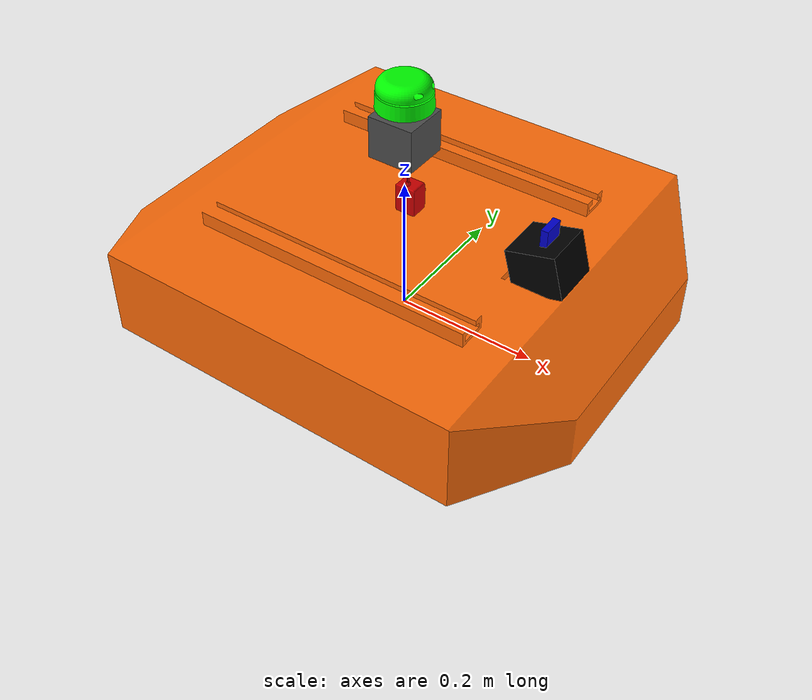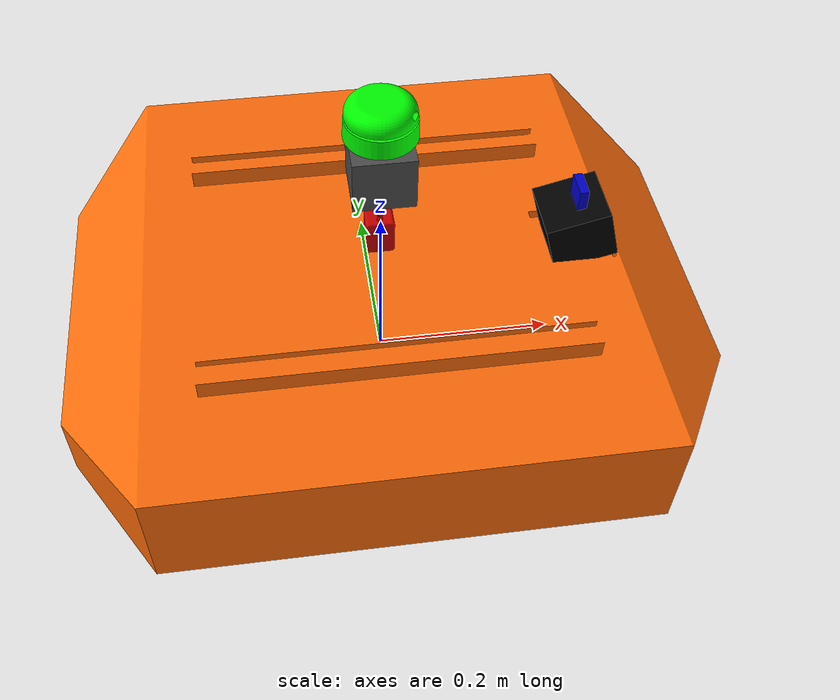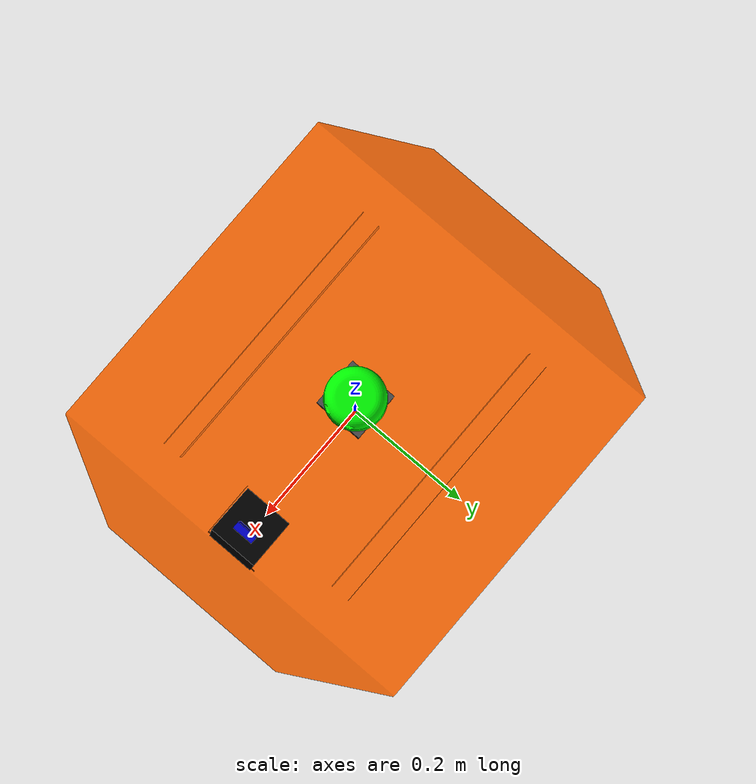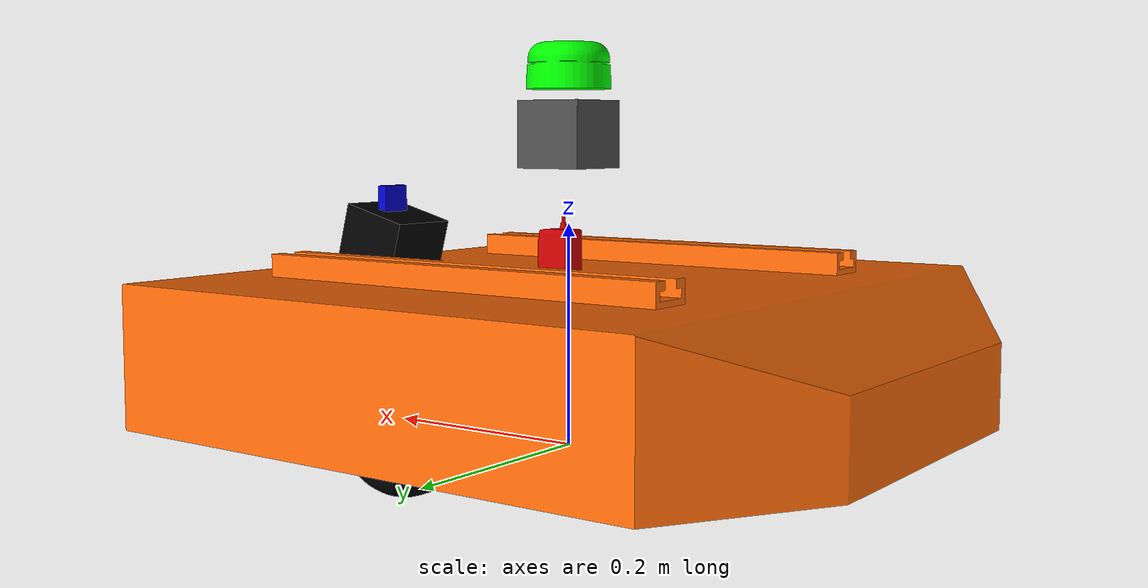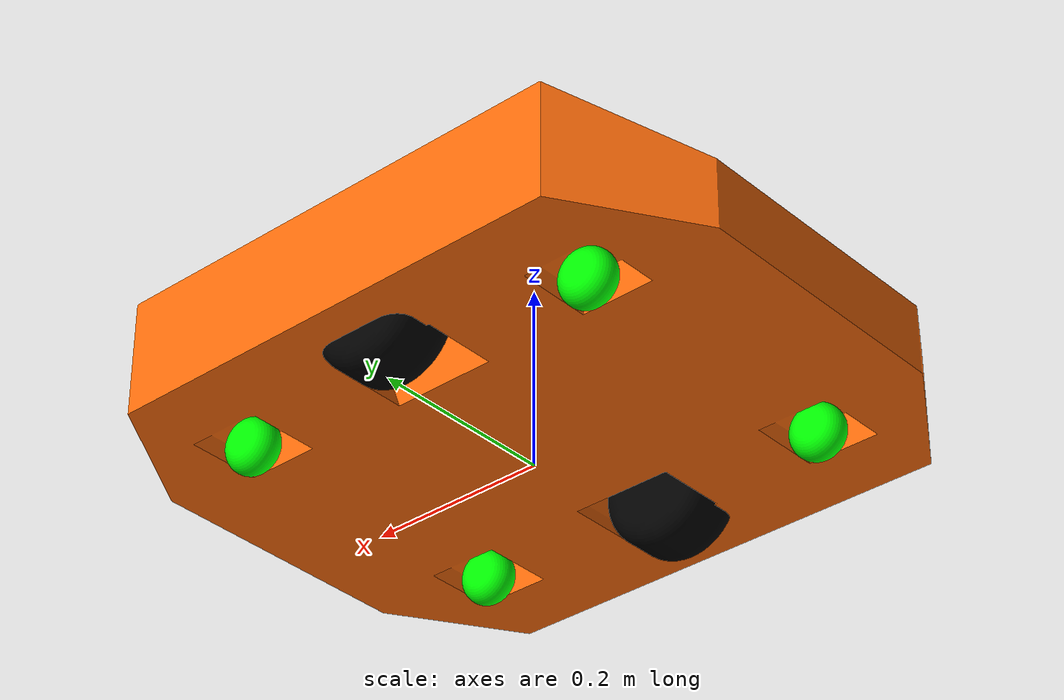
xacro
<?xml version="1.0" encoding="utf-8"?>
<robot name="tracer2" xmlns:xacro="http://www.ros.org/wiki/xacro">

  <xacro:include filename="$(find hospital-agv-sim)/urdf/materials.xacro" />
  <xacro:include filename="$(find hospital-agv-sim)/urdf/tracer2.gazebo" />

  <xacro:include filename="$(find hospital-agv-sim)/urdf/sensors/odom.xacro" />
  <xacro:include filename="$(find hospital-agv-sim)/urdf/sensors/imu.xacro" />
  <xacro:include filename="$(find hospital-agv-sim)/urdf/sensors/lidar.xacro" />
  <xacro:include filename="$(find hospital-agv-sim)/urdf/sensors/camera.xacro" />
  <xacro:include filename="$(find hospital-agv-sim)/urdf/sensors/livox_mid70.xacro" />
  <xacro:include filename="$(find hospital-agv-sim)/urdf/sensors/livox_mid360.xacro"/>

  <link name="base_footprint"/>

  <joint name="base_joint" type="fixed">
    <parent link="base_footprint"/>
    <child link="base_link"/>
    <origin xyz="0 0 0" rpy="0 0 0"/>
  </joint>

  <link name="base_link">
    <inertial>
      <origin xyz="-0.0003 0 0.092" rpy="0 0 0" />
      <mass value="42.875" />
      <inertia ixx="1.14" ixy="0" ixz="0.0007" iyy="1.50" iyz="0" izz="2.54" />
    </inertial>
    <visual>
      <origin xyz="0 0 0" rpy="0 0 0" />
      <geometry>
        <mesh filename="package://hospital-agv-sim/meshes/base_link.STL" />
      </geometry>
      <material name="orange"/>
    </visual>
    <collision>
      <origin xyz="0 0 0.1" rpy="0 0 0" />
      <geometry>
         <box size="0.6 0.4 0.15" />
      </geometry>
    </collision>
  </link>

  <xacro:macro name="apoyo_macro" params="name x y rpy_offset">
    <link name="${name}">
      <inertial>
        <mass value="0.08" /><inertia ixx="0.00002" ixy="0" ixz="0" iyy="0.00002" iyz="0" izz="0.00003" />
      </inertial>
      <visual>
        <origin xyz="0 0 0" rpy="0 0 0"/>
        <geometry>
           <mesh filename="package://hospital-agv-sim/meshes/${name}.STL" />
        </geometry>
        <material name="green"/>
      </visual>
      <collision>
        <geometry><sphere radius="0.03"/></geometry>
        <surface>
          <friction>
            <ode><mu>0.001</mu><mu2>0.001</mu2></ode>
          </friction>
        </surface>
      </collision>
    </link>
    <joint name="${name}_joint" type="fixed">
      <origin xyz="${x} ${y} 0.03" rpy="1.5708 ${rpy_offset} 0" />
      <parent link="base_link" /><child link="${name}" />
    </joint>
  </xacro:macro>

  <xacro:apoyo_macro name="apoyo_izquierdo_delantero_Link" x="0.21" y="0.1425"  rpy_offset="0"/>
  <xacro:apoyo_macro name="apoyo_derecho_delantero_Link"   x="0.21" y="-0.1425" rpy_offset="0"/>
  <xacro:apoyo_macro name="apoyo_izquierdo_trasero_Link"   x="-0.21" y="0.1425"  rpy_offset="1.2815"/>
  <xacro:apoyo_macro name="apoyo_derecho_trasero_Link"     x="-0.21" y="-0.1425" rpy_offset="-0.0407"/>

  <xacro:tracer_odom parent="base_link" />
  <xacro:sensor_imu parent="base_link"            xyz="0 0 0.175" rpy="0 0 0"/>
  <xacro:sensor_lidar parent="base_link"          xyz="0.0 0.0 0.32" rpy="0 0 0"/>
  <xacro:sensor_camera parent="base_link"         xyz="0.213 0 0.215" rpy="0 0 0"/>
  <xacro:sensor_livox_mid70 parent="base_link"    xyz="0.213 0 0.175" rpy="0 -0.2618 0"/>
  <xacro:sensor_livox_mid360 parent="base_link"   xyz="0.0 0.0 0.28" rpy="0 0 0"/>

</robot>

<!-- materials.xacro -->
<robot>

  <material name="black">
    <color rgba="0.0 0.0 0.0 1.0"/>
  </material>

  <material name="blue">
    <color rgba="0.0 0.0 0.8 1.0"/>
  </material>

  <material name="green">
    <color rgba="0.0 1.0 0.0 1.0"/>
  </material>

  <material name="grey">
    <color rgba="0.2 0.2 0.2 1.0"/>
  </material>

  <material name="orange">
    <color rgba="${255/255} ${108/255} ${10/255} 1.0"/>
  </material>

  <material name="brown">
    <color rgba="${222/255} ${207/255} ${195/255} 1.0"/>
  </material>

  <material name="red">
    <color rgba="0.8 0.0 0.0 1.0"/>
  </material>

  <material name="white">
    <color rgba="1.0 1.0 1.0 1.0"/>
  </material>

  <material name="pastel_green">
    <color rgba="${196/255} ${240/255} ${209/255} 1.0"/>
  </material>
</robot>

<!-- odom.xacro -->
<robot xmlns:xacro="http://www.ros.org/wiki/xacro">

  <xacro:macro name="tracer_odom" params="parent">

    <link name="rueda_izquierda_Link">
      <inertial>
        <origin xyz="0 0 0.037" rpy="0 0 0" />
        <mass value="0.85" />
        <inertia ixx="0.0011" ixy="0" ixz="0" iyy="0.0011" iyz="0" izz="0.0015" />
      </inertial>
      <visual>
        <origin xyz="0 0 0" rpy="0 0 0"/>
        <geometry>
           <mesh filename="package://hospital-agv-sim/meshes/rueda_izquierda_Link.STL" />
        </geometry>
        <material name="black"/>
      </visual>
      <collision>
        <origin xyz="0 0 0" rpy="0 0 0"/>
        <geometry>
          <cylinder radius="0.0625" length="0.04" />
        </geometry>
      </collision>
    </link>

    <joint name="rueda_izquierda_joint" type="continuous">
      <origin xyz="0 0.17 0.0625" rpy="-1.5708 0 0" />
      <parent link="${parent}" />
      <child link="rueda_izquierda_Link" />
      <axis xyz="0 0 1" />
    </joint>

    <link name="rueda_derecha_Link">
      <inertial>
        <origin xyz="0 0 -0.037" rpy="0 0 0" />
        <mass value="0.85" />
        <inertia ixx="0.0011" ixy="0" ixz="0" iyy="0.0011" iyz="0" izz="0.0015" />
      </inertial>
      <visual>
        <origin xyz="0 0 0" rpy="0 0 0"/>
        <geometry>
           <mesh filename="package://hospital-agv-sim/meshes/rueda_derecha_Link.STL" />
        </geometry>
        <material name="black"/>
      </visual>
      <collision>
        <origin xyz="0 0 0" rpy="0 0 0"/>
        <geometry>
          <cylinder radius="0.0625" length="0.04" />
        </geometry>
      </collision>
    </link>

    <joint name="rueda_derecha_joint" type="continuous">
      <origin xyz="0 -0.17 0.0625" rpy="-1.5708 0 0" />
      <parent link="${parent}" />
      <child link="rueda_derecha_Link" />
      <axis xyz="0 0 1" />
    </joint>

  </xacro:macro>
</robot>

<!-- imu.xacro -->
<robot xmlns:xacro="http://www.ros.org/wiki/xacro">
  <xacro:macro name="sensor_imu" params="parent xyz:='0 0 0' rpy:='0 0 0'">

    <link name="imu_link">
      <visual>
          <geometry>
              <mesh filename="package://hospital-agv-sim/meshes/imu_Link.STL" />
          </geometry>
          <material name="red"/>
          <origin xyz="0 0 0" rpy="0 -1.5708 0"/>
      </visual>
    </link>

    <joint name="imu_joint" type="fixed">
      <parent link="${parent}"/>
      <child link="imu_link"/>
      <origin xyz="${xyz}" rpy="${rpy}"/>
    </joint>

    <gazebo reference="imu_link">
      <sensor name="imu_sensor" type="imu">
        <always_on>1</always_on>
        <update_rate>100</update_rate>
        <visualize>false</visualize>
        <topic>imu</topic>
        <gz_frame_id>imu_link</gz_frame_id>

        <imu>
          <angular_velocity>
            <x><noise type="none"/></x>
            <y><noise type="none"/></y>
            <z><noise type="none"/></z>
          </angular_velocity>
          <linear_acceleration>
            <x><noise type="none"/></x>
            <y><noise type="none"/></y>
            <z><noise type="none"/></z>
          </linear_acceleration>
        </imu>

      </sensor>
    </gazebo>

  </xacro:macro>
</robot>

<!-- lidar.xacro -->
<robot xmlns:xacro="http://www.ros.org/wiki/xacro">
  <xacro:macro name="sensor_lidar" params="parent xyz:='0 0 0' rpy:='0 0 0'">

    <link name="rslidar_link">
      <visual>
        <origin xyz="0 0 0" rpy="1.5708 0 0"/>
        <geometry>
          <mesh filename="package://hospital-agv-sim/meshes/lidar_Link.STL" />
        </geometry>
        <material name="green"/>
      </visual>

      <collision>
        <origin xyz="0 0 0" rpy="1.5708 0 0"/>
        <geometry>
          <mesh filename="package://hospital-agv-sim/meshes/lidar_Link.STL" />
        </geometry>
      </collision>
    </link>

    <joint name="lidar_joint" type="fixed">
      <parent link="${parent}"/>
      <child link="rslidar_link"/>
      <origin xyz="${xyz}" rpy="${rpy}"/>
    </joint>

    <gazebo reference="rslidar_link">
      <sensor name="gpu_lidar" type="gpu_lidar">
        <topic>scan</topic>
        <update_rate>10</update_rate>
        <gz_frame_id>rslidar_link</gz_frame_id>
        <lidar>
          <scan>
            <horizontal>
              <samples>1600</samples>
              <resolution>1</resolution>
              <min_angle>-3.14159265</min_angle>
              <max_angle>3.14159265</max_angle>
            </horizontal>
            <vertical>
              <samples>1</samples>
              <resolution>1</resolution>
              <min_angle>0</min_angle>
              <max_angle>0</max_angle>
            </vertical>
          </scan>
          <range>
            <min>0.15</min>
            <max>12.0</max>
            <resolution>0.0005</resolution>
          </range>

        </lidar>
        <always_on>1</always_on>
        <visualize>false</visualize>
      </sensor>
    </gazebo>

  </xacro:macro>
</robot>

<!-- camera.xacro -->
<robot xmlns:xacro="http://www.ros.org/wiki/xacro">
  <xacro:macro name="sensor_camera" params="parent xyz:='0 0 0' rpy:='0 0 0'">

    <link name="camera_link">
      <visual>
        <geometry>
          <box size="0.010 0.03 0.03"/>
        </geometry>
        <material name="blue"/>
      </visual>
      <collision>
        <geometry>
          <box size="0.02 0.08 0.02"/>
        </geometry>
      </collision>
    </link>

    <joint name="camera_joint" type="fixed">
      <parent link="${parent}"/>
      <child link="camera_link"/>
      <origin xyz="${xyz}" rpy="${rpy}"/>
    </joint>

    <link name="camera_link_optical"/>
    <joint name="camera_optical_joint" type="fixed">
      <parent link="camera_link"/>
      <child link="camera_link_optical"/>
      <origin xyz="0 0 0" rpy="-1.5708 0 -1.5708"/>
    </joint>

    <gazebo reference="camera_link">
      <sensor name="camera" type="rgbd_camera">
        <camera>
          <horizontal_fov>1.5184</horizontal_fov>
          <image>
            <width>848</width>
            <height>480</height>
            <format>R8G8B8</format>
          </image>
          <clip>
            <near>0.6</near>
            <far>6.0</far> </clip>
          <optical_frame_id>camera_link_optical</optical_frame_id>

          <noise>
            <type>gaussian</type>
            <mean>0.0</mean>
            <stddev>0.003</stddev> </noise>
        </camera>
        <always_on>1</always_on>
        <update_rate>30</update_rate> <visualize>false</visualize>
        <topic>rgbd_camera</topic>
        <enable_metrics>false</enable_metrics>
      </sensor>
    </gazebo>

  </xacro:macro>
</robot>

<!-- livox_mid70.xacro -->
<robot xmlns:xacro="http://www.ros.org/wiki/xacro">
  <xacro:macro name="sensor_livox_mid70" params="parent xyz:='0 0 0' rpy:='0 0 0'">

    <link name="livox_mid70_link">
      <visual>
        <origin xyz="0 0 0" rpy="0 0 0"/>
        <geometry>
          <box size="0.07 0.07 0.06"/> </geometry>
        <material name="black"/>
      </visual>
      <collision>
        <origin xyz="0 0 0" rpy="0 0 0"/>
        <geometry>
          <box size="0.07 0.07 0.06"/>
        </geometry>
      </collision>
      <inertial>
        <mass value="0.5"/>
        <inertia ixx="0.001" ixy="0" ixz="0" iyy="0.001" iyz="0" izz="0.001"/>
      </inertial>
    </link>

    <joint name="livox_mid70_joint" type="fixed">
      <parent link="${parent}"/>
      <child link="livox_mid70_link"/>
      <origin xyz="${xyz}" rpy="${rpy}"/>
    </joint>

    <gazebo reference="livox_mid70_link">
      <sensor name='livox_mid70' type='gpu_lidar'>
        <topic>livox_mid70</topic>
        <ignition_msg_output_type>ignition.msgs.PointCloudPacked</ignition_msg_output_type>
        <update_rate>10</update_rate>

        <lidar>
          <scan>
            <horizontal>
              <samples>100</samples>
              <resolution>1</resolution>
              <min_angle>-0.6109</min_angle>
              <max_angle>0.6109</max_angle>
            </horizontal>
            <vertical>
              <samples>100</samples>
              <resolution>1</resolution>
              <min_angle>-0.6109</min_angle>
              <max_angle>0.6109</max_angle>
            </vertical>
          </scan>
          <range>
            <min>0.10</min>
            <max>40.0</max>
            <resolution>0.002</resolution>
          </range>
        </lidar>

        <always_on>1</always_on>
        <visualize>false</visualize>
        <gz_frame_id>livox_mid70_link</gz_frame_id>
      </sensor>
    </gazebo>

  </xacro:macro>
</robot>

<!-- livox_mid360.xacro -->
<robot xmlns:xacro="http://www.ros.org/wiki/xacro">

  <xacro:macro name="sensor_livox_mid360" params="parent xyz:='0 0 0' rpy:='0 0 0'">

    <link name="livox_mid360_link">
      <visual>
        <origin xyz="0 0 0" rpy="0 0 0"/>
        <geometry>
          <!-- Caja aproximada al tamaño real del Mid-360: 65×65×60 mm -->
          <box size="0.065 0.065 0.060"/>
        </geometry>
        <material name="dark_grey"/>
      </visual>
      <collision>
        <origin xyz="0 0 0" rpy="0 0 0"/>
        <geometry>
          <box size="0.065 0.065 0.060"/>
        </geometry>
      </collision>
      <inertial>
        <mass value="0.265"/>  <!-- Peso real: 265 g -->
        <inertia ixx="0.0005" ixy="0" ixz="0"
                 iyy="0.0005" iyz="0"
                 izz="0.0005"/>
      </inertial>
    </link>

    <joint name="livox_mid360_joint" type="fixed">
      <parent link="${parent}"/>
      <child link="livox_mid360_link"/>
      <origin xyz="${xyz}" rpy="${rpy}"/>
    </joint>

    <!-- ── Plugin Gazebo ─────────────────────────────────────────────── -->
    <gazebo reference="livox_mid360_link">
      <sensor name="livox_mid360" type="gpu_lidar">

        <!-- Gazebo publica PointCloudPacked; el bridge ROS lo convierte a PC2 -->
        <topic>livox_mid360</topic>
        <ignition_msg_output_type>ignition.msgs.PointCloudPacked</ignition_msg_output_type>
        <update_rate>10</update_rate>

        <lidar>
          <scan>
            <!-- Horizontal: 360° completos -->
            <horizontal>
              <samples>400</samples>
              <resolution>1</resolution>
              <min_angle>-3.14159265</min_angle>
              <max_angle>3.14159265</max_angle>
            </horizontal>

            <!-- Vertical: -7° a +52° (FOV real del Mid-360) -->
            <!-- En radianes: -7° = -0.1222  |  +52° = 0.9076 -->
            <vertical>
              <samples>32</samples>
              <resolution>1</resolution>
              <min_angle>-0.1222</min_angle>
              <max_angle>0.9076</max_angle>
            </vertical>
          </scan>

          <range>
            <min>0.10</min>
            <max>40.0</max>
            <resolution>0.002</resolution>  <!-- 2 mm resolución de rango -->
          </range>

          <!-- Simulación básica de ruido óptico (el nodo .cpp añade más) -->
          <noise>
            <type>gaussian</type>
            <mean>0.0</mean>
            <stddev>0.002</stddev>
          </noise>
        </lidar>

        <always_on>1</always_on>
        <visualize>false</visualize>
        <gz_frame_id>livox_mid360_link</gz_frame_id>
      </sensor>
    </gazebo>

  </xacro:macro>
</robot>
